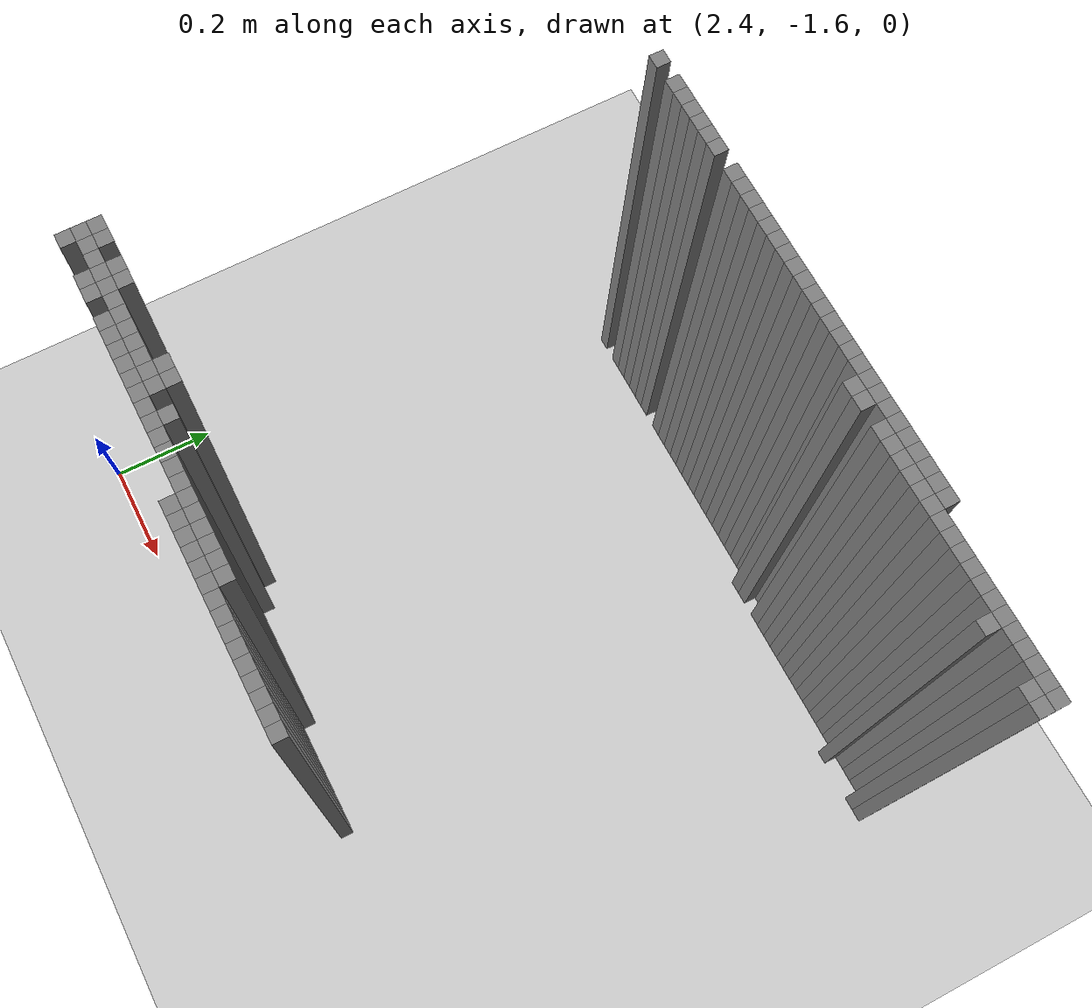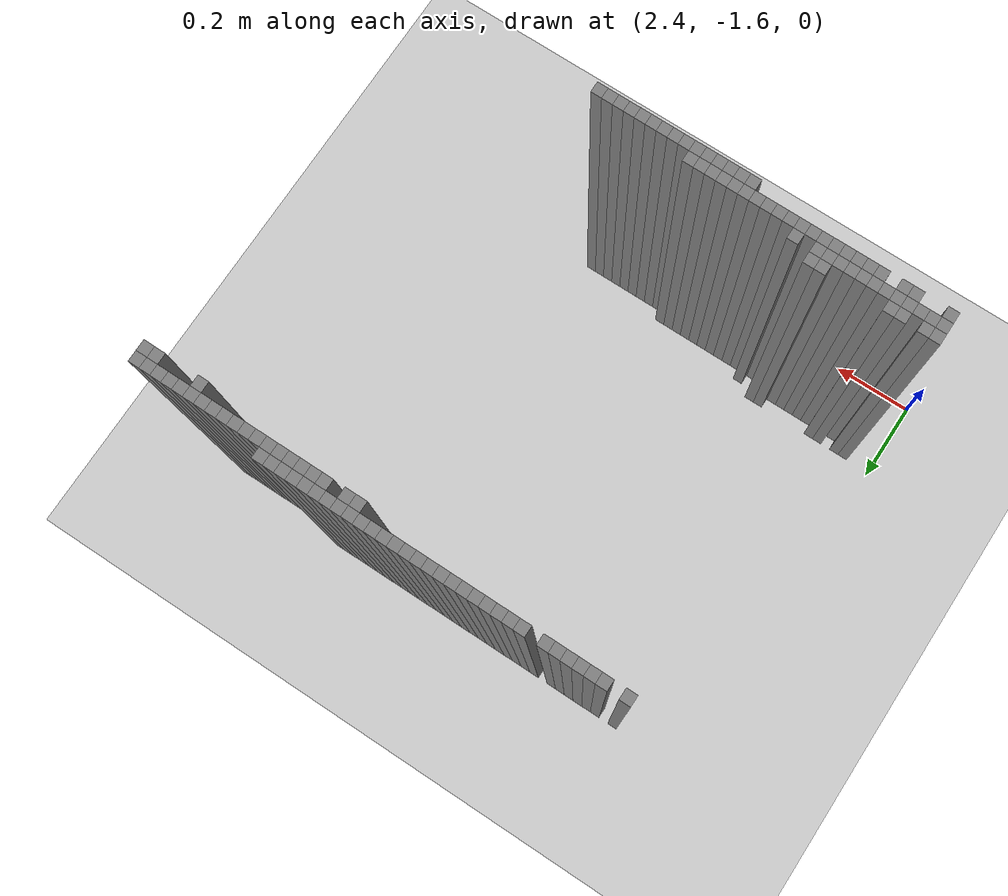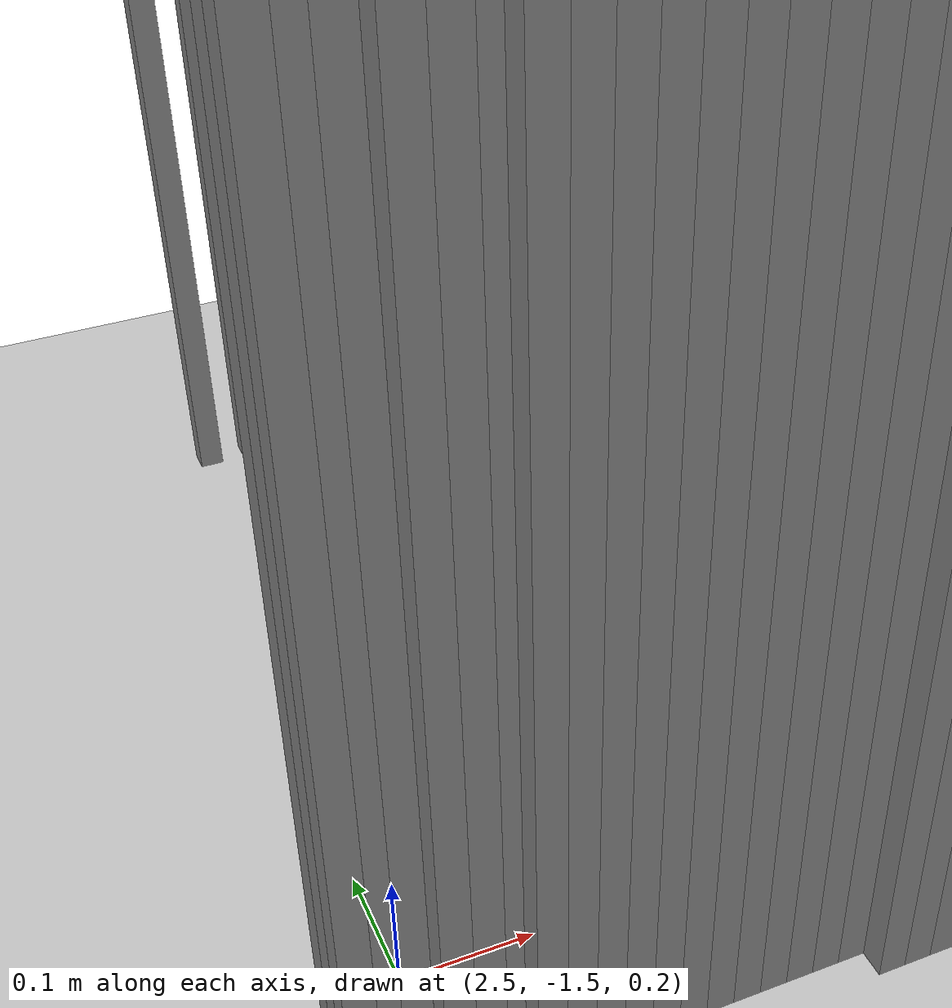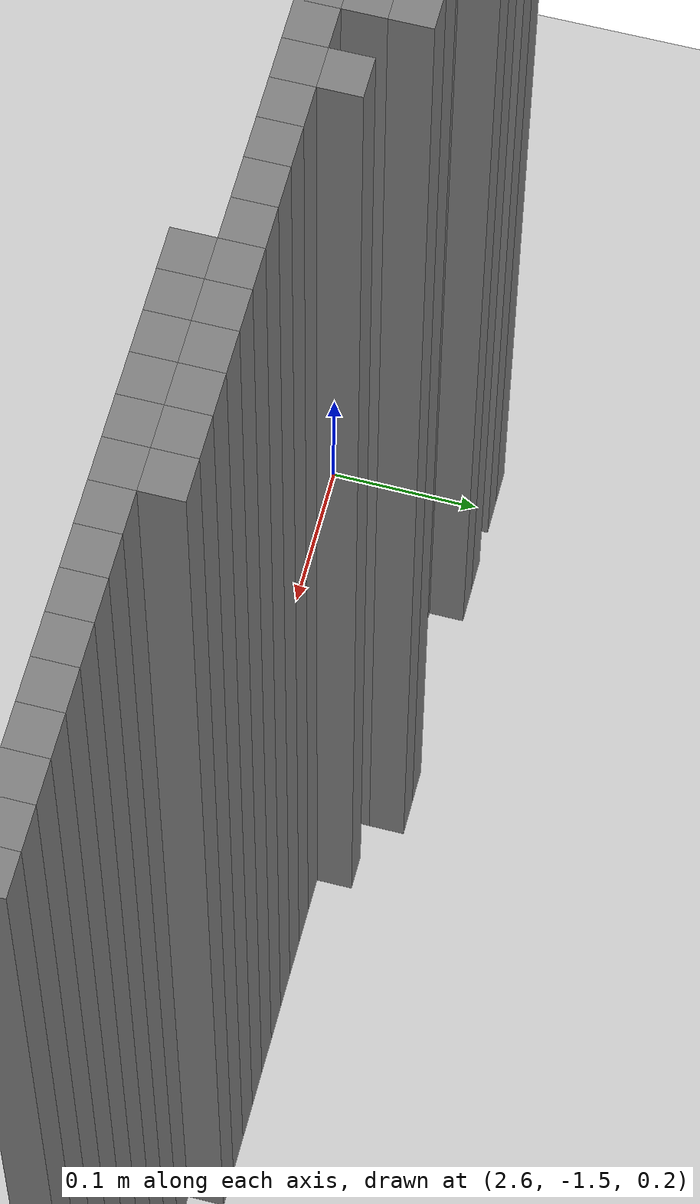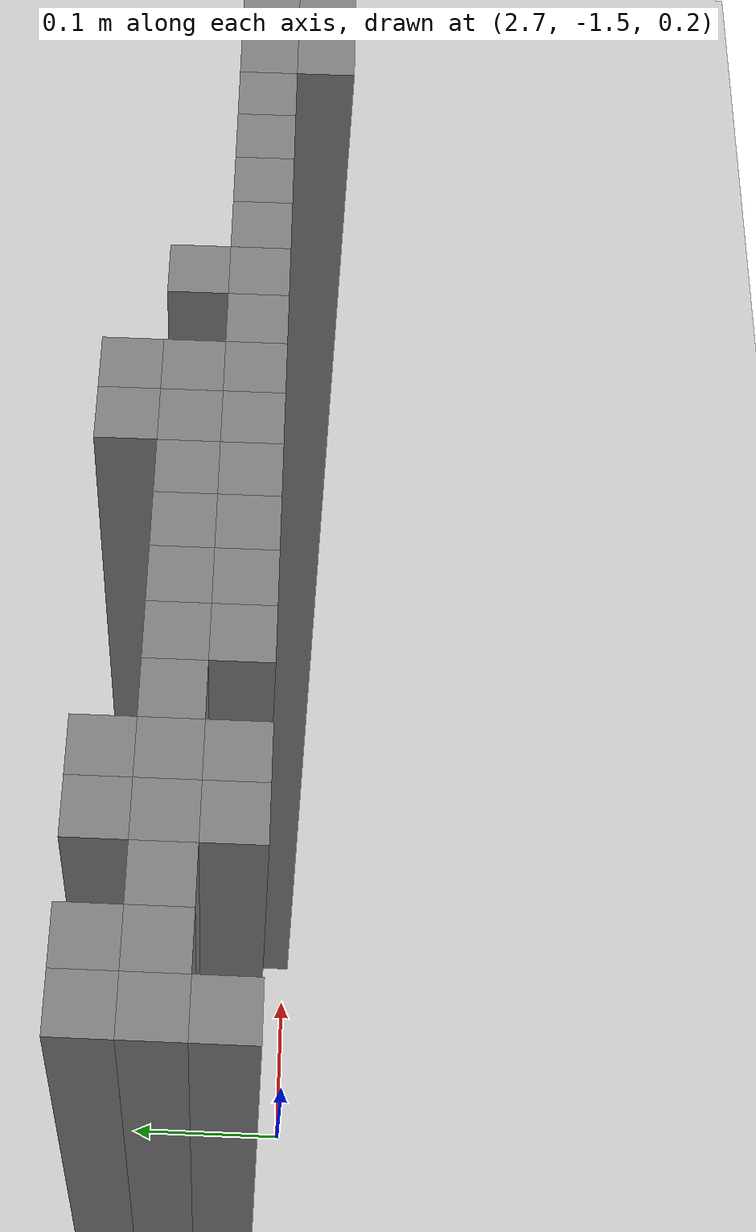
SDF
<sdf version="1.6">
 <world name="map_world">
  <include><uri>model://ground_plane</uri></include>
  <include><uri>model://sun</uri></include>
  <model name="obs_197_71">
   <static>true</static>
   <link name="link">
    <collision name="collision"><geometry><box><size>0.025 0.025 1.0</size></box></geometry></collision>
    <visual name="visual">
     <geometry><box><size>0.025 0.025 1.0</size></box></geometry>
     <material><ambient>0.5 0.5 0.5 1</ambient></material>
    </visual>
   </link>
   <pose>2.5987650000000007 -0.5440709999999997 0.5 0 0 0</pose>
  </model>
  <model name="obs_199_71">
   <static>true</static>
   <link name="link">
    <collision name="collision"><geometry><box><size>0.025 0.025 1.0</size></box></geometry></collision>
    <visual name="visual">
     <geometry><box><size>0.025 0.025 1.0</size></box></geometry>
     <material><ambient>0.5 0.5 0.5 1</ambient></material>
    </visual>
   </link>
   <pose>2.6487650000000005 -0.5440709999999997 0.5 0 0 0</pose>
  </model>
  <model name="obs_200_71">
   <static>true</static>
   <link name="link">
    <collision name="collision"><geometry><box><size>0.025 0.025 1.0</size></box></geometry></collision>
    <visual name="visual">
     <geometry><box><size>0.025 0.025 1.0</size></box></geometry>
     <material><ambient>0.5 0.5 0.5 1</ambient></material>
    </visual>
   </link>
   <pose>2.673765 -0.5440709999999997 0.5 0 0 0</pose>
  </model>
  <model name="obs_201_71">
   <static>true</static>
   <link name="link">
    <collision name="collision"><geometry><box><size>0.025 0.025 1.0</size></box></geometry></collision>
    <visual name="visual">
     <geometry><box><size>0.025 0.025 1.0</size></box></geometry>
     <material><ambient>0.5 0.5 0.5 1</ambient></material>
    </visual>
   </link>
   <pose>2.6987650000000003 -0.5440709999999997 0.5 0 0 0</pose>
  </model>
  <model name="obs_202_71">
   <static>true</static>
   <link name="link">
    <collision name="collision"><geometry><box><size>0.025 0.025 1.0</size></box></geometry></collision>
    <visual name="visual">
     <geometry><box><size>0.025 0.025 1.0</size></box></geometry>
     <material><ambient>0.5 0.5 0.5 1</ambient></material>
    </visual>
   </link>
   <pose>2.7237650000000007 -0.5440709999999997 0.5 0 0 0</pose>
  </model>
  <model name="obs_203_71">
   <static>true</static>
   <link name="link">
    <collision name="collision"><geometry><box><size>0.025 0.025 1.0</size></box></geometry></collision>
    <visual name="visual">
     <geometry><box><size>0.025 0.025 1.0</size></box></geometry>
     <material><ambient>0.5 0.5 0.5 1</ambient></material>
    </visual>
   </link>
   <pose>2.748765 -0.5440709999999997 0.5 0 0 0</pose>
  </model>
  <model name="obs_204_71">
   <static>true</static>
   <link name="link">
    <collision name="collision"><geometry><box><size>0.025 0.025 1.0</size></box></geometry></collision>
    <visual name="visual">
     <geometry><box><size>0.025 0.025 1.0</size></box></geometry>
     <material><ambient>0.5 0.5 0.5 1</ambient></material>
    </visual>
   </link>
   <pose>2.7737650000000005 -0.5440709999999997 0.5 0 0 0</pose>
  </model>
  <model name="obs_206_71">
   <static>true</static>
   <link name="link">
    <collision name="collision"><geometry><box><size>0.025 0.025 1.0</size></box></geometry></collision>
    <visual name="visual">
     <geometry><box><size>0.025 0.025 1.0</size></box></geometry>
     <material><ambient>0.5 0.5 0.5 1</ambient></material>
    </visual>
   </link>
   <pose>2.8237650000000003 -0.5440709999999997 0.5 0 0 0</pose>
  </model>
  <model name="obs_207_71">
   <static>true</static>
   <link name="link">
    <collision name="collision"><geometry><box><size>0.025 0.025 1.0</size></box></geometry></collision>
    <visual name="visual">
     <geometry><box><size>0.025 0.025 1.0</size></box></geometry>
     <material><ambient>0.5 0.5 0.5 1</ambient></material>
    </visual>
   </link>
   <pose>2.8487650000000007 -0.5440709999999997 0.5 0 0 0</pose>
  </model>
  <model name="obs_208_71">
   <static>true</static>
   <link name="link">
    <collision name="collision"><geometry><box><size>0.025 0.025 1.0</size></box></geometry></collision>
    <visual name="visual">
     <geometry><box><size>0.025 0.025 1.0</size></box></geometry>
     <material><ambient>0.5 0.5 0.5 1</ambient></material>
    </visual>
   </link>
   <pose>2.873765 -0.5440709999999997 0.5 0 0 0</pose>
  </model>
  <model name="obs_209_71">
   <static>true</static>
   <link name="link">
    <collision name="collision"><geometry><box><size>0.025 0.025 1.0</size></box></geometry></collision>
    <visual name="visual">
     <geometry><box><size>0.025 0.025 1.0</size></box></geometry>
     <material><ambient>0.5 0.5 0.5 1</ambient></material>
    </visual>
   </link>
   <pose>2.8987650000000005 -0.5440709999999997 0.5 0 0 0</pose>
  </model>
  <model name="obs_210_71">
   <static>true</static>
   <link name="link">
    <collision name="collision"><geometry><box><size>0.025 0.025 1.0</size></box></geometry></collision>
    <visual name="visual">
     <geometry><box><size>0.025 0.025 1.0</size></box></geometry>
     <material><ambient>0.5 0.5 0.5 1</ambient></material>
    </visual>
   </link>
   <pose>2.923765 -0.5440709999999997 0.5 0 0 0</pose>
  </model>
  <model name="obs_211_71">
   <static>true</static>
   <link name="link">
    <collision name="collision"><geometry><box><size>0.025 0.025 1.0</size></box></geometry></collision>
    <visual name="visual">
     <geometry><box><size>0.025 0.025 1.0</size></box></geometry>
     <material><ambient>0.5 0.5 0.5 1</ambient></material>
    </visual>
   </link>
   <pose>2.9487650000000003 -0.5440709999999997 0.5 0 0 0</pose>
  </model>
  <model name="obs_212_71">
   <static>true</static>
   <link name="link">
    <collision name="collision"><geometry><box><size>0.025 0.025 1.0</size></box></geometry></collision>
    <visual name="visual">
     <geometry><box><size>0.025 0.025 1.0</size></box></geometry>
     <material><ambient>0.5 0.5 0.5 1</ambient></material>
    </visual>
   </link>
   <pose>2.9737650000000007 -0.5440709999999997 0.5 0 0 0</pose>
  </model>
  <model name="obs_213_71">
   <static>true</static>
   <link name="link">
    <collision name="collision"><geometry><box><size>0.025 0.025 1.0</size></box></geometry></collision>
    <visual name="visual">
     <geometry><box><size>0.025 0.025 1.0</size></box></geometry>
     <material><ambient>0.5 0.5 0.5 1</ambient></material>
    </visual>
   </link>
   <pose>2.998765 -0.5440709999999997 0.5 0 0 0</pose>
  </model>
  <model name="obs_214_71">
   <static>true</static>
   <link name="link">
    <collision name="collision"><geometry><box><size>0.025 0.025 1.0</size></box></geometry></collision>
    <visual name="visual">
     <geometry><box><size>0.025 0.025 1.0</size></box></geometry>
     <material><ambient>0.5 0.5 0.5 1</ambient></material>
    </visual>
   </link>
   <pose>3.0237650000000005 -0.5440709999999997 0.5 0 0 0</pose>
  </model>
  <model name="obs_215_71">
   <static>true</static>
   <link name="link">
    <collision name="collision"><geometry><box><size>0.025 0.025 1.0</size></box></geometry></collision>
    <visual name="visual">
     <geometry><box><size>0.025 0.025 1.0</size></box></geometry>
     <material><ambient>0.5 0.5 0.5 1</ambient></material>
    </visual>
   </link>
   <pose>3.048765 -0.5440709999999997 0.5 0 0 0</pose>
  </model>
  <model name="obs_216_71">
   <static>true</static>
   <link name="link">
    <collision name="collision"><geometry><box><size>0.025 0.025 1.0</size></box></geometry></collision>
    <visual name="visual">
     <geometry><box><size>0.025 0.025 1.0</size></box></geometry>
     <material><ambient>0.5 0.5 0.5 1</ambient></material>
    </visual>
   </link>
   <pose>3.0737650000000003 -0.5440709999999997 0.5 0 0 0</pose>
  </model>
  <model name="obs_217_71">
   <static>true</static>
   <link name="link">
    <collision name="collision"><geometry><box><size>0.025 0.025 1.0</size></box></geometry></collision>
    <visual name="visual">
     <geometry><box><size>0.025 0.025 1.0</size></box></geometry>
     <material><ambient>0.5 0.5 0.5 1</ambient></material>
    </visual>
   </link>
   <pose>3.0987650000000007 -0.5440709999999997 0.5 0 0 0</pose>
  </model>
  <model name="obs_218_71">
   <static>true</static>
   <link name="link">
    <collision name="collision"><geometry><box><size>0.025 0.025 1.0</size></box></geometry></collision>
    <visual name="visual">
     <geometry><box><size>0.025 0.025 1.0</size></box></geometry>
     <material><ambient>0.5 0.5 0.5 1</ambient></material>
    </visual>
   </link>
   <pose>3.123765 -0.5440709999999997 0.5 0 0 0</pose>
  </model>
  <model name="obs_219_71">
   <static>true</static>
   <link name="link">
    <collision name="collision"><geometry><box><size>0.025 0.025 1.0</size></box></geometry></collision>
    <visual name="visual">
     <geometry><box><size>0.025 0.025 1.0</size></box></geometry>
     <material><ambient>0.5 0.5 0.5 1</ambient></material>
    </visual>
   </link>
   <pose>3.1487650000000005 -0.5440709999999997 0.5 0 0 0</pose>
  </model>
  <model name="obs_220_71">
   <static>true</static>
   <link name="link">
    <collision name="collision"><geometry><box><size>0.025 0.025 1.0</size></box></geometry></collision>
    <visual name="visual">
     <geometry><box><size>0.025 0.025 1.0</size></box></geometry>
     <material><ambient>0.5 0.5 0.5 1</ambient></material>
    </visual>
   </link>
   <pose>3.173765 -0.5440709999999997 0.5 0 0 0</pose>
  </model>
  <model name="obs_221_71">
   <static>true</static>
   <link name="link">
    <collision name="collision"><geometry><box><size>0.025 0.025 1.0</size></box></geometry></collision>
    <visual name="visual">
     <geometry><box><size>0.025 0.025 1.0</size></box></geometry>
     <material><ambient>0.5 0.5 0.5 1</ambient></material>
    </visual>
   </link>
   <pose>3.1987650000000003 -0.5440709999999997 0.5 0 0 0</pose>
  </model>
  <model name="obs_222_71">
   <static>true</static>
   <link name="link">
    <collision name="collision"><geometry><box><size>0.025 0.025 1.0</size></box></geometry></collision>
    <visual name="visual">
     <geometry><box><size>0.025 0.025 1.0</size></box></geometry>
     <material><ambient>0.5 0.5 0.5 1</ambient></material>
    </visual>
   </link>
   <pose>3.2237650000000007 -0.5440709999999997 0.5 0 0 0</pose>
  </model>
  <model name="obs_223_71">
   <static>true</static>
   <link name="link">
    <collision name="collision"><geometry><box><size>0.025 0.025 1.0</size></box></geometry></collision>
    <visual name="visual">
     <geometry><box><size>0.025 0.025 1.0</size></box></geometry>
     <material><ambient>0.5 0.5 0.5 1</ambient></material>
    </visual>
   </link>
   <pose>3.248765 -0.5440709999999997 0.5 0 0 0</pose>
  </model>
  <model name="obs_224_71">
   <static>true</static>
   <link name="link">
    <collision name="collision"><geometry><box><size>0.025 0.025 1.0</size></box></geometry></collision>
    <visual name="visual">
     <geometry><box><size>0.025 0.025 1.0</size></box></geometry>
     <material><ambient>0.5 0.5 0.5 1</ambient></material>
    </visual>
   </link>
   <pose>3.2737650000000005 -0.5440709999999997 0.5 0 0 0</pose>
  </model>
  <model name="obs_225_71">
   <static>true</static>
   <link name="link">
    <collision name="collision"><geometry><box><size>0.025 0.025 1.0</size></box></geometry></collision>
    <visual name="visual">
     <geometry><box><size>0.025 0.025 1.0</size></box></geometry>
     <material><ambient>0.5 0.5 0.5 1</ambient></material>
    </visual>
   </link>
   <pose>3.298765 -0.5440709999999997 0.5 0 0 0</pose>
  </model>
  <model name="obs_226_71">
   <static>true</static>
   <link name="link">
    <collision name="collision"><geometry><box><size>0.025 0.025 1.0</size></box></geometry></collision>
    <visual name="visual">
     <geometry><box><size>0.025 0.025 1.0</size></box></geometry>
     <material><ambient>0.5 0.5 0.5 1</ambient></material>
    </visual>
   </link>
   <pose>3.3237650000000003 -0.5440709999999997 0.5 0 0 0</pose>
  </model>
  <model name="obs_227_71">
   <static>true</static>
   <link name="link">
    <collision name="collision"><geometry><box><size>0.025 0.025 1.0</size></box></geometry></collision>
    <visual name="visual">
     <geometry><box><size>0.025 0.025 1.0</size></box></geometry>
     <material><ambient>0.5 0.5 0.5 1</ambient></material>
    </visual>
   </link>
   <pose>3.3487650000000007 -0.5440709999999997 0.5 0 0 0</pose>
  </model>
  <model name="obs_228_71">
   <static>true</static>
   <link name="link">
    <collision name="collision"><geometry><box><size>0.025 0.025 1.0</size></box></geometry></collision>
    <visual name="visual">
     <geometry><box><size>0.025 0.025 1.0</size></box></geometry>
     <material><ambient>0.5 0.5 0.5 1</ambient></material>
    </visual>
   </link>
   <pose>3.373765 -0.5440709999999997 0.5 0 0 0</pose>
  </model>
  <model name="obs_229_71">
   <static>true</static>
   <link name="link">
    <collision name="collision"><geometry><box><size>0.025 0.025 1.0</size></box></geometry></collision>
    <visual name="visual">
     <geometry><box><size>0.025 0.025 1.0</size></box></geometry>
     <material><ambient>0.5 0.5 0.5 1</ambient></material>
    </visual>
   </link>
   <pose>3.3987650000000005 -0.5440709999999997 0.5 0 0 0</pose>
  </model>
  <model name="obs_221_72">
   <static>true</static>
   <link name="link">
    <collision name="collision"><geometry><box><size>0.025 0.025 1.0</size></box></geometry></collision>
    <visual name="visual">
     <geometry><box><size>0.025 0.025 1.0</size></box></geometry>
     <material><ambient>0.5 0.5 0.5 1</ambient></material>
    </visual>
   </link>
   <pose>3.1987650000000003 -0.5690709999999999 0.5 0 0 0</pose>
  </model>
  <model name="obs_222_72">
   <static>true</static>
   <link name="link">
    <collision name="collision"><geometry><box><size>0.025 0.025 1.0</size></box></geometry></collision>
    <visual name="visual">
     <geometry><box><size>0.025 0.025 1.0</size></box></geometry>
     <material><ambient>0.5 0.5 0.5 1</ambient></material>
    </visual>
   </link>
   <pose>3.2237650000000007 -0.5690709999999999 0.5 0 0 0</pose>
  </model>
  <model name="obs_224_72">
   <static>true</static>
   <link name="link">
    <collision name="collision"><geometry><box><size>0.025 0.025 1.0</size></box></geometry></collision>
    <visual name="visual">
     <geometry><box><size>0.025 0.025 1.0</size></box></geometry>
     <material><ambient>0.5 0.5 0.5 1</ambient></material>
    </visual>
   </link>
   <pose>3.2737650000000005 -0.5690709999999999 0.5 0 0 0</pose>
  </model>
  <model name="obs_225_72">
   <static>true</static>
   <link name="link">
    <collision name="collision"><geometry><box><size>0.025 0.025 1.0</size></box></geometry></collision>
    <visual name="visual">
     <geometry><box><size>0.025 0.025 1.0</size></box></geometry>
     <material><ambient>0.5 0.5 0.5 1</ambient></material>
    </visual>
   </link>
   <pose>3.298765 -0.5690709999999999 0.5 0 0 0</pose>
  </model>
  <model name="obs_226_72">
   <static>true</static>
   <link name="link">
    <collision name="collision"><geometry><box><size>0.025 0.025 1.0</size></box></geometry></collision>
    <visual name="visual">
     <geometry><box><size>0.025 0.025 1.0</size></box></geometry>
     <material><ambient>0.5 0.5 0.5 1</ambient></material>
    </visual>
   </link>
   <pose>3.3237650000000003 -0.5690709999999999 0.5 0 0 0</pose>
  </model>
  <model name="obs_227_72">
   <static>true</static>
   <link name="link">
    <collision name="collision"><geometry><box><size>0.025 0.025 1.0</size></box></geometry></collision>
    <visual name="visual">
     <geometry><box><size>0.025 0.025 1.0</size></box></geometry>
     <material><ambient>0.5 0.5 0.5 1</ambient></material>
    </visual>
   </link>
   <pose>3.3487650000000007 -0.5690709999999999 0.5 0 0 0</pose>
  </model>
  <model name="obs_228_72">
   <static>true</static>
   <link name="link">
    <collision name="collision"><geometry><box><size>0.025 0.025 1.0</size></box></geometry></collision>
    <visual name="visual">
     <geometry><box><size>0.025 0.025 1.0</size></box></geometry>
     <material><ambient>0.5 0.5 0.5 1</ambient></material>
    </visual>
   </link>
   <pose>3.373765 -0.5690709999999999 0.5 0 0 0</pose>
  </model>
  <model name="obs_229_72">
   <static>true</static>
   <link name="link">
    <collision name="collision"><geometry><box><size>0.025 0.025 1.0</size></box></geometry></collision>
    <visual name="visual">
     <geometry><box><size>0.025 0.025 1.0</size></box></geometry>
     <material><ambient>0.5 0.5 0.5 1</ambient></material>
    </visual>
   </link>
   <pose>3.3987650000000005 -0.5690709999999999 0.5 0 0 0</pose>
  </model>
  <model name="obs_230_72">
   <static>true</static>
   <link name="link">
    <collision name="collision"><geometry><box><size>0.025 0.025 1.0</size></box></geometry></collision>
    <visual name="visual">
     <geometry><box><size>0.025 0.025 1.0</size></box></geometry>
     <material><ambient>0.5 0.5 0.5 1</ambient></material>
    </visual>
   </link>
   <pose>3.423765 -0.5690709999999999 0.5 0 0 0</pose>
  </model>
  <model name="obs_231_72">
   <static>true</static>
   <link name="link">
    <collision name="collision"><geometry><box><size>0.025 0.025 1.0</size></box></geometry></collision>
    <visual name="visual">
     <geometry><box><size>0.025 0.025 1.0</size></box></geometry>
     <material><ambient>0.5 0.5 0.5 1</ambient></material>
    </visual>
   </link>
   <pose>3.4487650000000003 -0.5690709999999999 0.5 0 0 0</pose>
  </model>
  <model name="obs_232_72">
   <static>true</static>
   <link name="link">
    <collision name="collision"><geometry><box><size>0.025 0.025 1.0</size></box></geometry></collision>
    <visual name="visual">
     <geometry><box><size>0.025 0.025 1.0</size></box></geometry>
     <material><ambient>0.5 0.5 0.5 1</ambient></material>
    </visual>
   </link>
   <pose>3.4737650000000007 -0.5690709999999999 0.5 0 0 0</pose>
  </model>
  <model name="obs_233_72">
   <static>true</static>
   <link name="link">
    <collision name="collision"><geometry><box><size>0.025 0.025 1.0</size></box></geometry></collision>
    <visual name="visual">
     <geometry><box><size>0.025 0.025 1.0</size></box></geometry>
     <material><ambient>0.5 0.5 0.5 1</ambient></material>
    </visual>
   </link>
   <pose>3.498765 -0.5690709999999999 0.5 0 0 0</pose>
  </model>
  <model name="obs_234_72">
   <static>true</static>
   <link name="link">
    <collision name="collision"><geometry><box><size>0.025 0.025 1.0</size></box></geometry></collision>
    <visual name="visual">
     <geometry><box><size>0.025 0.025 1.0</size></box></geometry>
     <material><ambient>0.5 0.5 0.5 1</ambient></material>
    </visual>
   </link>
   <pose>3.5237650000000005 -0.5690709999999999 0.5 0 0 0</pose>
  </model>
  <model name="obs_235_72">
   <static>true</static>
   <link name="link">
    <collision name="collision"><geometry><box><size>0.025 0.025 1.0</size></box></geometry></collision>
    <visual name="visual">
     <geometry><box><size>0.025 0.025 1.0</size></box></geometry>
     <material><ambient>0.5 0.5 0.5 1</ambient></material>
    </visual>
   </link>
   <pose>3.548765 -0.5690709999999999 0.5 0 0 0</pose>
  </model>
  <model name="obs_236_72">
   <static>true</static>
   <link name="link">
    <collision name="collision"><geometry><box><size>0.025 0.025 1.0</size></box></geometry></collision>
    <visual name="visual">
     <geometry><box><size>0.025 0.025 1.0</size></box></geometry>
     <material><ambient>0.5 0.5 0.5 1</ambient></material>
    </visual>
   </link>
   <pose>3.5737650000000003 -0.5690709999999999 0.5 0 0 0</pose>
  </model>
  <model name="obs_237_72">
   <static>true</static>
   <link name="link">
    <collision name="collision"><geometry><box><size>0.025 0.025 1.0</size></box></geometry></collision>
    <visual name="visual">
     <geometry><box><size>0.025 0.025 1.0</size></box></geometry>
     <material><ambient>0.5 0.5 0.5 1</ambient></material>
    </visual>
   </link>
   <pose>3.5987650000000007 -0.5690709999999999 0.5 0 0 0</pose>
  </model>
  <model name="obs_238_72">
   <static>true</static>
   <link name="link">
    <collision name="collision"><geometry><box><size>0.025 0.025 1.0</size></box></geometry></collision>
    <visual name="visual">
     <geometry><box><size>0.025 0.025 1.0</size></box></geometry>
     <material><ambient>0.5 0.5 0.5 1</ambient></material>
    </visual>
   </link>
   <pose>3.623765 -0.5690709999999999 0.5 0 0 0</pose>
  </model>
  <model name="obs_239_72">
   <static>true</static>
   <link name="link">
    <collision name="collision"><geometry><box><size>0.025 0.025 1.0</size></box></geometry></collision>
    <visual name="visual">
     <geometry><box><size>0.025 0.025 1.0</size></box></geometry>
     <material><ambient>0.5 0.5 0.5 1</ambient></material>
    </visual>
   </link>
   <pose>3.6487650000000005 -0.5690709999999999 0.5 0 0 0</pose>
  </model>
  <model name="obs_240_72">
   <static>true</static>
   <link name="link">
    <collision name="collision"><geometry><box><size>0.025 0.025 1.0</size></box></geometry></collision>
    <visual name="visual">
     <geometry><box><size>0.025 0.025 1.0</size></box></geometry>
     <material><ambient>0.5 0.5 0.5 1</ambient></material>
    </visual>
   </link>
   <pose>3.673765 -0.5690709999999999 0.5 0 0 0</pose>
  </model>
  <model name="obs_241_72">
   <static>true</static>
   <link name="link">
    <collision name="collision"><geometry><box><size>0.025 0.025 1.0</size></box></geometry></collision>
    <visual name="visual">
     <geometry><box><size>0.025 0.025 1.0</size></box></geometry>
     <material><ambient>0.5 0.5 0.5 1</ambient></material>
    </visual>
   </link>
   <pose>3.6987650000000003 -0.5690709999999999 0.5 0 0 0</pose>
  </model>
  <model name="obs_236_73">
   <static>true</static>
   <link name="link">
    <collision name="collision"><geometry><box><size>0.025 0.025 1.0</size></box></geometry></collision>
    <visual name="visual">
     <geometry><box><size>0.025 0.025 1.0</size></box></geometry>
     <material><ambient>0.5 0.5 0.5 1</ambient></material>
    </visual>
   </link>
   <pose>3.5737650000000003 -0.5940709999999998 0.5 0 0 0</pose>
  </model>
  <model name="obs_240_73">
   <static>true</static>
   <link name="link">
    <collision name="collision"><geometry><box><size>0.025 0.025 1.0</size></box></geometry></collision>
    <visual name="visual">
     <geometry><box><size>0.025 0.025 1.0</size></box></geometry>
     <material><ambient>0.5 0.5 0.5 1</ambient></material>
    </visual>
   </link>
   <pose>3.673765 -0.5940709999999998 0.5 0 0 0</pose>
  </model>
  <model name="obs_241_73">
   <static>true</static>
   <link name="link">
    <collision name="collision"><geometry><box><size>0.025 0.025 1.0</size></box></geometry></collision>
    <visual name="visual">
     <geometry><box><size>0.025 0.025 1.0</size></box></geometry>
     <material><ambient>0.5 0.5 0.5 1</ambient></material>
    </visual>
   </link>
   <pose>3.6987650000000003 -0.5940709999999998 0.5 0 0 0</pose>
  </model>
  <model name="obs_192_106">
   <static>true</static>
   <link name="link">
    <collision name="collision"><geometry><box><size>0.025 0.025 1.0</size></box></geometry></collision>
    <visual name="visual">
     <geometry><box><size>0.025 0.025 1.0</size></box></geometry>
     <material><ambient>0.5 0.5 0.5 1</ambient></material>
    </visual>
   </link>
   <pose>2.4737650000000007 -1.4190709999999997 0.5 0 0 0</pose>
  </model>
  <model name="obs_193_106">
   <static>true</static>
   <link name="link">
    <collision name="collision"><geometry><box><size>0.025 0.025 1.0</size></box></geometry></collision>
    <visual name="visual">
     <geometry><box><size>0.025 0.025 1.0</size></box></geometry>
     <material><ambient>0.5 0.5 0.5 1</ambient></material>
    </visual>
   </link>
   <pose>2.498765 -1.4190709999999997 0.5 0 0 0</pose>
  </model>
  <model name="obs_195_106">
   <static>true</static>
   <link name="link">
    <collision name="collision"><geometry><box><size>0.025 0.025 1.0</size></box></geometry></collision>
    <visual name="visual">
     <geometry><box><size>0.025 0.025 1.0</size></box></geometry>
     <material><ambient>0.5 0.5 0.5 1</ambient></material>
    </visual>
   </link>
   <pose>2.548765 -1.4190709999999997 0.5 0 0 0</pose>
  </model>
  <model name="obs_196_106">
   <static>true</static>
   <link name="link">
    <collision name="collision"><geometry><box><size>0.025 0.025 1.0</size></box></geometry></collision>
    <visual name="visual">
     <geometry><box><size>0.025 0.025 1.0</size></box></geometry>
     <material><ambient>0.5 0.5 0.5 1</ambient></material>
    </visual>
   </link>
   <pose>2.5737650000000003 -1.4190709999999997 0.5 0 0 0</pose>
  </model>
  <model name="obs_202_106">
   <static>true</static>
   <link name="link">
    <collision name="collision"><geometry><box><size>0.025 0.025 1.0</size></box></geometry></collision>
    <visual name="visual">
     <geometry><box><size>0.025 0.025 1.0</size></box></geometry>
     <material><ambient>0.5 0.5 0.5 1</ambient></material>
    </visual>
   </link>
   <pose>2.7237650000000007 -1.4190709999999997 0.5 0 0 0</pose>
  </model>
  <model name="obs_203_106">
   <static>true</static>
   <link name="link">
    <collision name="collision"><geometry><box><size>0.025 0.025 1.0</size></box></geometry></collision>
    <visual name="visual">
     <geometry><box><size>0.025 0.025 1.0</size></box></geometry>
     <material><ambient>0.5 0.5 0.5 1</ambient></material>
    </visual>
   </link>
   <pose>2.748765 -1.4190709999999997 0.5 0 0 0</pose>
  </model>
  <model name="obs_192_107">
   <static>true</static>
   <link name="link">
    <collision name="collision"><geometry><box><size>0.025 0.025 1.0</size></box></geometry></collision>
    <visual name="visual">
     <geometry><box><size>0.025 0.025 1.0</size></box></geometry>
     <material><ambient>0.5 0.5 0.5 1</ambient></material>
    </visual>
   </link>
   <pose>2.4737650000000007 -1.4440709999999999 0.5 0 0 0</pose>
  </model>
  <model name="obs_193_107">
   <static>true</static>
   <link name="link">
    <collision name="collision"><geometry><box><size>0.025 0.025 1.0</size></box></geometry></collision>
    <visual name="visual">
     <geometry><box><size>0.025 0.025 1.0</size></box></geometry>
     <material><ambient>0.5 0.5 0.5 1</ambient></material>
    </visual>
   </link>
   <pose>2.498765 -1.4440709999999999 0.5 0 0 0</pose>
  </model>
  <model name="obs_194_107">
   <static>true</static>
   <link name="link">
    <collision name="collision"><geometry><box><size>0.025 0.025 1.0</size></box></geometry></collision>
    <visual name="visual">
     <geometry><box><size>0.025 0.025 1.0</size></box></geometry>
     <material><ambient>0.5 0.5 0.5 1</ambient></material>
    </visual>
   </link>
   <pose>2.5237650000000005 -1.4440709999999999 0.5 0 0 0</pose>
  </model>
  <model name="obs_195_107">
   <static>true</static>
   <link name="link">
    <collision name="collision"><geometry><box><size>0.025 0.025 1.0</size></box></geometry></collision>
    <visual name="visual">
     <geometry><box><size>0.025 0.025 1.0</size></box></geometry>
     <material><ambient>0.5 0.5 0.5 1</ambient></material>
    </visual>
   </link>
   <pose>2.548765 -1.4440709999999999 0.5 0 0 0</pose>
  </model>
  <model name="obs_196_107">
   <static>true</static>
   <link name="link">
    <collision name="collision"><geometry><box><size>0.025 0.025 1.0</size></box></geometry></collision>
    <visual name="visual">
     <geometry><box><size>0.025 0.025 1.0</size></box></geometry>
     <material><ambient>0.5 0.5 0.5 1</ambient></material>
    </visual>
   </link>
   <pose>2.5737650000000003 -1.4440709999999999 0.5 0 0 0</pose>
  </model>
  <model name="obs_197_107">
   <static>true</static>
   <link name="link">
    <collision name="collision"><geometry><box><size>0.025 0.025 1.0</size></box></geometry></collision>
    <visual name="visual">
     <geometry><box><size>0.025 0.025 1.0</size></box></geometry>
     <material><ambient>0.5 0.5 0.5 1</ambient></material>
    </visual>
   </link>
   <pose>2.5987650000000007 -1.4440709999999999 0.5 0 0 0</pose>
  </model>
  <model name="obs_198_107">
   <static>true</static>
   <link name="link">
    <collision name="collision"><geometry><box><size>0.025 0.025 1.0</size></box></geometry></collision>
    <visual name="visual">
     <geometry><box><size>0.025 0.025 1.0</size></box></geometry>
     <material><ambient>0.5 0.5 0.5 1</ambient></material>
    </visual>
   </link>
   <pose>2.623765 -1.4440709999999999 0.5 0 0 0</pose>
  </model>
  <model name="obs_199_107">
   <static>true</static>
   <link name="link">
    <collision name="collision"><geometry><box><size>0.025 0.025 1.0</size></box></geometry></collision>
    <visual name="visual">
     <geometry><box><size>0.025 0.025 1.0</size></box></geometry>
     <material><ambient>0.5 0.5 0.5 1</ambient></material>
    </visual>
   </link>
   <pose>2.6487650000000005 -1.4440709999999999 0.5 0 0 0</pose>
  </model>
  <model name="obs_200_107">
   <static>true</static>
   <link name="link">
    <collision name="collision"><geometry><box><size>0.025 0.025 1.0</size></box></geometry></collision>
    <visual name="visual">
     <geometry><box><size>0.025 0.025 1.0</size></box></geometry>
     <material><ambient>0.5 0.5 0.5 1</ambient></material>
    </visual>
   </link>
   <pose>2.673765 -1.4440709999999999 0.5 0 0 0</pose>
  </model>
  <model name="obs_201_107">
   <static>true</static>
   <link name="link">
    <collision name="collision"><geometry><box><size>0.025 0.025 1.0</size></box></geometry></collision>
    <visual name="visual">
     <geometry><box><size>0.025 0.025 1.0</size></box></geometry>
     <material><ambient>0.5 0.5 0.5 1</ambient></material>
    </visual>
   </link>
   <pose>2.6987650000000003 -1.4440709999999999 0.5 0 0 0</pose>
  </model>
  <model name="obs_202_107">
   <static>true</static>
   <link name="link">
    <collision name="collision"><geometry><box><size>0.025 0.025 1.0</size></box></geometry></collision>
    <visual name="visual">
     <geometry><box><size>0.025 0.025 1.0</size></box></geometry>
     <material><ambient>0.5 0.5 0.5 1</ambient></material>
    </visual>
   </link>
   <pose>2.7237650000000007 -1.4440709999999999 0.5 0 0 0</pose>
  </model>
  <model name="obs_203_107">
   <static>true</static>
   <link name="link">
    <collision name="collision"><geometry><box><size>0.025 0.025 1.0</size></box></geometry></collision>
    <visual name="visual">
     <geometry><box><size>0.025 0.025 1.0</size></box></geometry>
     <material><ambient>0.5 0.5 0.5 1</ambient></material>
    </visual>
   </link>
   <pose>2.748765 -1.4440709999999999 0.5 0 0 0</pose>
  </model>
  <model name="obs_205_107">
   <static>true</static>
   <link name="link">
    <collision name="collision"><geometry><box><size>0.025 0.025 1.0</size></box></geometry></collision>
    <visual name="visual">
     <geometry><box><size>0.025 0.025 1.0</size></box></geometry>
     <material><ambient>0.5 0.5 0.5 1</ambient></material>
    </visual>
   </link>
   <pose>2.798765 -1.4440709999999999 0.5 0 0 0</pose>
  </model>
  <model name="obs_192_108">
   <static>true</static>
   <link name="link">
    <collision name="collision"><geometry><box><size>0.025 0.025 1.0</size></box></geometry></collision>
    <visual name="visual">
     <geometry><box><size>0.025 0.025 1.0</size></box></geometry>
     <material><ambient>0.5 0.5 0.5 1</ambient></material>
    </visual>
   </link>
   <pose>2.4737650000000007 -1.469071 0.5 0 0 0</pose>
  </model>
  <model name="obs_195_108">
   <static>true</static>
   <link name="link">
    <collision name="collision"><geometry><box><size>0.025 0.025 1.0</size></box></geometry></collision>
    <visual name="visual">
     <geometry><box><size>0.025 0.025 1.0</size></box></geometry>
     <material><ambient>0.5 0.5 0.5 1</ambient></material>
    </visual>
   </link>
   <pose>2.548765 -1.469071 0.5 0 0 0</pose>
  </model>
  <model name="obs_196_108">
   <static>true</static>
   <link name="link">
    <collision name="collision"><geometry><box><size>0.025 0.025 1.0</size></box></geometry></collision>
    <visual name="visual">
     <geometry><box><size>0.025 0.025 1.0</size></box></geometry>
     <material><ambient>0.5 0.5 0.5 1</ambient></material>
    </visual>
   </link>
   <pose>2.5737650000000003 -1.469071 0.5 0 0 0</pose>
  </model>
  <model name="obs_198_108">
   <static>true</static>
   <link name="link">
    <collision name="collision"><geometry><box><size>0.025 0.025 1.0</size></box></geometry></collision>
    <visual name="visual">
     <geometry><box><size>0.025 0.025 1.0</size></box></geometry>
     <material><ambient>0.5 0.5 0.5 1</ambient></material>
    </visual>
   </link>
   <pose>2.623765 -1.469071 0.5 0 0 0</pose>
  </model>
  <model name="obs_199_108">
   <static>true</static>
   <link name="link">
    <collision name="collision"><geometry><box><size>0.025 0.025 1.0</size></box></geometry></collision>
    <visual name="visual">
     <geometry><box><size>0.025 0.025 1.0</size></box></geometry>
     <material><ambient>0.5 0.5 0.5 1</ambient></material>
    </visual>
   </link>
   <pose>2.6487650000000005 -1.469071 0.5 0 0 0</pose>
  </model>
  <model name="obs_200_108">
   <static>true</static>
   <link name="link">
    <collision name="collision"><geometry><box><size>0.025 0.025 1.0</size></box></geometry></collision>
    <visual name="visual">
     <geometry><box><size>0.025 0.025 1.0</size></box></geometry>
     <material><ambient>0.5 0.5 0.5 1</ambient></material>
    </visual>
   </link>
   <pose>2.673765 -1.469071 0.5 0 0 0</pose>
  </model>
  <model name="obs_201_108">
   <static>true</static>
   <link name="link">
    <collision name="collision"><geometry><box><size>0.025 0.025 1.0</size></box></geometry></collision>
    <visual name="visual">
     <geometry><box><size>0.025 0.025 1.0</size></box></geometry>
     <material><ambient>0.5 0.5 0.5 1</ambient></material>
    </visual>
   </link>
   <pose>2.6987650000000003 -1.469071 0.5 0 0 0</pose>
  </model>
  <model name="obs_202_108">
   <static>true</static>
   <link name="link">
    <collision name="collision"><geometry><box><size>0.025 0.025 1.0</size></box></geometry></collision>
    <visual name="visual">
     <geometry><box><size>0.025 0.025 1.0</size></box></geometry>
     <material><ambient>0.5 0.5 0.5 1</ambient></material>
    </visual>
   </link>
   <pose>2.7237650000000007 -1.469071 0.5 0 0 0</pose>
  </model>
  <model name="obs_203_108">
   <static>true</static>
   <link name="link">
    <collision name="collision"><geometry><box><size>0.025 0.025 1.0</size></box></geometry></collision>
    <visual name="visual">
     <geometry><box><size>0.025 0.025 1.0</size></box></geometry>
     <material><ambient>0.5 0.5 0.5 1</ambient></material>
    </visual>
   </link>
   <pose>2.748765 -1.469071 0.5 0 0 0</pose>
  </model>
  <model name="obs_204_108">
   <static>true</static>
   <link name="link">
    <collision name="collision"><geometry><box><size>0.025 0.025 1.0</size></box></geometry></collision>
    <visual name="visual">
     <geometry><box><size>0.025 0.025 1.0</size></box></geometry>
     <material><ambient>0.5 0.5 0.5 1</ambient></material>
    </visual>
   </link>
   <pose>2.7737650000000005 -1.469071 0.5 0 0 0</pose>
  </model>
  <model name="obs_205_108">
   <static>true</static>
   <link name="link">
    <collision name="collision"><geometry><box><size>0.025 0.025 1.0</size></box></geometry></collision>
    <visual name="visual">
     <geometry><box><size>0.025 0.025 1.0</size></box></geometry>
     <material><ambient>0.5 0.5 0.5 1</ambient></material>
    </visual>
   </link>
   <pose>2.798765 -1.469071 0.5 0 0 0</pose>
  </model>
  <model name="obs_206_108">
   <static>true</static>
   <link name="link">
    <collision name="collision"><geometry><box><size>0.025 0.025 1.0</size></box></geometry></collision>
    <visual name="visual">
     <geometry><box><size>0.025 0.025 1.0</size></box></geometry>
     <material><ambient>0.5 0.5 0.5 1</ambient></material>
    </visual>
   </link>
   <pose>2.8237650000000003 -1.469071 0.5 0 0 0</pose>
  </model>
  <model name="obs_207_108">
   <static>true</static>
   <link name="link">
    <collision name="collision"><geometry><box><size>0.025 0.025 1.0</size></box></geometry></collision>
    <visual name="visual">
     <geometry><box><size>0.025 0.025 1.0</size></box></geometry>
     <material><ambient>0.5 0.5 0.5 1</ambient></material>
    </visual>
   </link>
   <pose>2.8487650000000007 -1.469071 0.5 0 0 0</pose>
  </model>
  <model name="obs_208_108">
   <static>true</static>
   <link name="link">
    <collision name="collision"><geometry><box><size>0.025 0.025 1.0</size></box></geometry></collision>
    <visual name="visual">
     <geometry><box><size>0.025 0.025 1.0</size></box></geometry>
     <material><ambient>0.5 0.5 0.5 1</ambient></material>
    </visual>
   </link>
   <pose>2.873765 -1.469071 0.5 0 0 0</pose>
  </model>
  <model name="obs_209_108">
   <static>true</static>
   <link name="link">
    <collision name="collision"><geometry><box><size>0.025 0.025 1.0</size></box></geometry></collision>
    <visual name="visual">
     <geometry><box><size>0.025 0.025 1.0</size></box></geometry>
     <material><ambient>0.5 0.5 0.5 1</ambient></material>
    </visual>
   </link>
   <pose>2.8987650000000005 -1.469071 0.5 0 0 0</pose>
  </model>
  <model name="obs_210_108">
   <static>true</static>
   <link name="link">
    <collision name="collision"><geometry><box><size>0.025 0.025 1.0</size></box></geometry></collision>
    <visual name="visual">
     <geometry><box><size>0.025 0.025 1.0</size></box></geometry>
     <material><ambient>0.5 0.5 0.5 1</ambient></material>
    </visual>
   </link>
   <pose>2.923765 -1.469071 0.5 0 0 0</pose>
  </model>
  <model name="obs_211_108">
   <static>true</static>
   <link name="link">
    <collision name="collision"><geometry><box><size>0.025 0.025 1.0</size></box></geometry></collision>
    <visual name="visual">
     <geometry><box><size>0.025 0.025 1.0</size></box></geometry>
     <material><ambient>0.5 0.5 0.5 1</ambient></material>
    </visual>
   </link>
   <pose>2.9487650000000003 -1.469071 0.5 0 0 0</pose>
  </model>
  <model name="obs_212_108">
   <static>true</static>
   <link name="link">
    <collision name="collision"><geometry><box><size>0.025 0.025 1.0</size></box></geometry></collision>
    <visual name="visual">
     <geometry><box><size>0.025 0.025 1.0</size></box></geometry>
     <material><ambient>0.5 0.5 0.5 1</ambient></material>
    </visual>
   </link>
   <pose>2.9737650000000007 -1.469071 0.5 0 0 0</pose>
  </model>
  <model name="obs_213_108">
   <static>true</static>
   <link name="link">
    <collision name="collision"><geometry><box><size>0.025 0.025 1.0</size></box></geometry></collision>
    <visual name="visual">
     <geometry><box><size>0.025 0.025 1.0</size></box></geometry>
     <material><ambient>0.5 0.5 0.5 1</ambient></material>
    </visual>
   </link>
   <pose>2.998765 -1.469071 0.5 0 0 0</pose>
  </model>
  <model name="obs_214_108">
   <static>true</static>
   <link name="link">
    <collision name="collision"><geometry><box><size>0.025 0.025 1.0</size></box></geometry></collision>
    <visual name="visual">
     <geometry><box><size>0.025 0.025 1.0</size></box></geometry>
     <material><ambient>0.5 0.5 0.5 1</ambient></material>
    </visual>
   </link>
   <pose>3.0237650000000005 -1.469071 0.5 0 0 0</pose>
  </model>
  <model name="obs_215_108">
   <static>true</static>
   <link name="link">
    <collision name="collision"><geometry><box><size>0.025 0.025 1.0</size></box></geometry></collision>
    <visual name="visual">
     <geometry><box><size>0.025 0.025 1.0</size></box></geometry>
     <material><ambient>0.5 0.5 0.5 1</ambient></material>
    </visual>
   </link>
   <pose>3.048765 -1.469071 0.5 0 0 0</pose>
  </model>
  <model name="obs_210_109">
   <static>true</static>
   <link name="link">
    <collision name="collision"><geometry><box><size>0.025 0.025 1.0</size></box></geometry></collision>
    <visual name="visual">
     <geometry><box><size>0.025 0.025 1.0</size></box></geometry>
     <material><ambient>0.5 0.5 0.5 1</ambient></material>
    </visual>
   </link>
   <pose>2.923765 -1.494071 0.5 0 0 0</pose>
  </model>
  <model name="obs_211_109">
   <static>true</static>
   <link name="link">
    <collision name="collision"><geometry><box><size>0.025 0.025 1.0</size></box></geometry></collision>
    <visual name="visual">
     <geometry><box><size>0.025 0.025 1.0</size></box></geometry>
     <material><ambient>0.5 0.5 0.5 1</ambient></material>
    </visual>
   </link>
   <pose>2.9487650000000003 -1.494071 0.5 0 0 0</pose>
  </model>
  <model name="obs_212_109">
   <static>true</static>
   <link name="link">
    <collision name="collision"><geometry><box><size>0.025 0.025 1.0</size></box></geometry></collision>
    <visual name="visual">
     <geometry><box><size>0.025 0.025 1.0</size></box></geometry>
     <material><ambient>0.5 0.5 0.5 1</ambient></material>
    </visual>
   </link>
   <pose>2.9737650000000007 -1.494071 0.5 0 0 0</pose>
  </model>
  <model name="obs_213_109">
   <static>true</static>
   <link name="link">
    <collision name="collision"><geometry><box><size>0.025 0.025 1.0</size></box></geometry></collision>
    <visual name="visual">
     <geometry><box><size>0.025 0.025 1.0</size></box></geometry>
     <material><ambient>0.5 0.5 0.5 1</ambient></material>
    </visual>
   </link>
   <pose>2.998765 -1.494071 0.5 0 0 0</pose>
  </model>
  <model name="obs_214_109">
   <static>true</static>
   <link name="link">
    <collision name="collision"><geometry><box><size>0.025 0.025 1.0</size></box></geometry></collision>
    <visual name="visual">
     <geometry><box><size>0.025 0.025 1.0</size></box></geometry>
     <material><ambient>0.5 0.5 0.5 1</ambient></material>
    </visual>
   </link>
   <pose>3.0237650000000005 -1.494071 0.5 0 0 0</pose>
  </model>
  <model name="obs_215_109">
   <static>true</static>
   <link name="link">
    <collision name="collision"><geometry><box><size>0.025 0.025 1.0</size></box></geometry></collision>
    <visual name="visual">
     <geometry><box><size>0.025 0.025 1.0</size></box></geometry>
     <material><ambient>0.5 0.5 0.5 1</ambient></material>
    </visual>
   </link>
   <pose>3.048765 -1.494071 0.5 0 0 0</pose>
  </model>
  <model name="obs_216_109">
   <static>true</static>
   <link name="link">
    <collision name="collision"><geometry><box><size>0.025 0.025 1.0</size></box></geometry></collision>
    <visual name="visual">
     <geometry><box><size>0.025 0.025 1.0</size></box></geometry>
     <material><ambient>0.5 0.5 0.5 1</ambient></material>
    </visual>
   </link>
   <pose>3.0737650000000003 -1.494071 0.5 0 0 0</pose>
  </model>
  <model name="obs_217_109">
   <static>true</static>
   <link name="link">
    <collision name="collision"><geometry><box><size>0.025 0.025 1.0</size></box></geometry></collision>
    <visual name="visual">
     <geometry><box><size>0.025 0.025 1.0</size></box></geometry>
     <material><ambient>0.5 0.5 0.5 1</ambient></material>
    </visual>
   </link>
   <pose>3.0987650000000007 -1.494071 0.5 0 0 0</pose>
  </model>
  <model name="obs_218_109">
   <static>true</static>
   <link name="link">
    <collision name="collision"><geometry><box><size>0.025 0.025 1.0</size></box></geometry></collision>
    <visual name="visual">
     <geometry><box><size>0.025 0.025 1.0</size></box></geometry>
     <material><ambient>0.5 0.5 0.5 1</ambient></material>
    </visual>
   </link>
   <pose>3.123765 -1.494071 0.5 0 0 0</pose>
  </model>
  <model name="obs_219_109">
   <static>true</static>
   <link name="link">
    <collision name="collision"><geometry><box><size>0.025 0.025 1.0</size></box></geometry></collision>
    <visual name="visual">
     <geometry><box><size>0.025 0.025 1.0</size></box></geometry>
     <material><ambient>0.5 0.5 0.5 1</ambient></material>
    </visual>
   </link>
   <pose>3.1487650000000005 -1.494071 0.5 0 0 0</pose>
  </model>
  <model name="obs_220_109">
   <static>true</static>
   <link name="link">
    <collision name="collision"><geometry><box><size>0.025 0.025 1.0</size></box></geometry></collision>
    <visual name="visual">
     <geometry><box><size>0.025 0.025 1.0</size></box></geometry>
     <material><ambient>0.5 0.5 0.5 1</ambient></material>
    </visual>
   </link>
   <pose>3.173765 -1.494071 0.5 0 0 0</pose>
  </model>
  <model name="obs_221_109">
   <static>true</static>
   <link name="link">
    <collision name="collision"><geometry><box><size>0.025 0.025 1.0</size></box></geometry></collision>
    <visual name="visual">
     <geometry><box><size>0.025 0.025 1.0</size></box></geometry>
     <material><ambient>0.5 0.5 0.5 1</ambient></material>
    </visual>
   </link>
   <pose>3.1987650000000003 -1.494071 0.5 0 0 0</pose>
  </model>
  <model name="obs_222_109">
   <static>true</static>
   <link name="link">
    <collision name="collision"><geometry><box><size>0.025 0.025 1.0</size></box></geometry></collision>
    <visual name="visual">
     <geometry><box><size>0.025 0.025 1.0</size></box></geometry>
     <material><ambient>0.5 0.5 0.5 1</ambient></material>
    </visual>
   </link>
   <pose>3.2237650000000007 -1.494071 0.5 0 0 0</pose>
  </model>
  <model name="obs_223_109">
   <static>true</static>
   <link name="link">
    <collision name="collision"><geometry><box><size>0.025 0.025 1.0</size></box></geometry></collision>
    <visual name="visual">
     <geometry><box><size>0.025 0.025 1.0</size></box></geometry>
     <material><ambient>0.5 0.5 0.5 1</ambient></material>
    </visual>
   </link>
   <pose>3.248765 -1.494071 0.5 0 0 0</pose>
  </model>
  <model name="obs_224_109">
   <static>true</static>
   <link name="link">
    <collision name="collision"><geometry><box><size>0.025 0.025 1.0</size></box></geometry></collision>
    <visual name="visual">
     <geometry><box><size>0.025 0.025 1.0</size></box></geometry>
     <material><ambient>0.5 0.5 0.5 1</ambient></material>
    </visual>
   </link>
   <pose>3.2737650000000005 -1.494071 0.5 0 0 0</pose>
  </model>
 </world>
</sdf>
